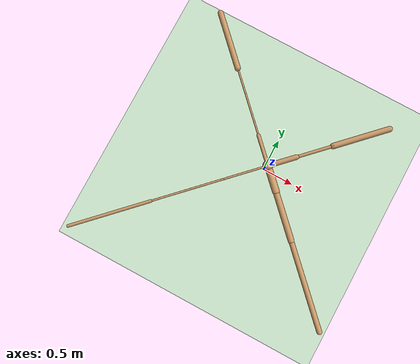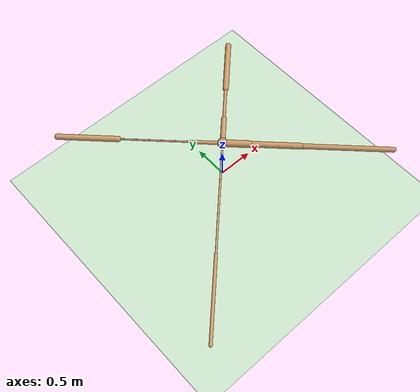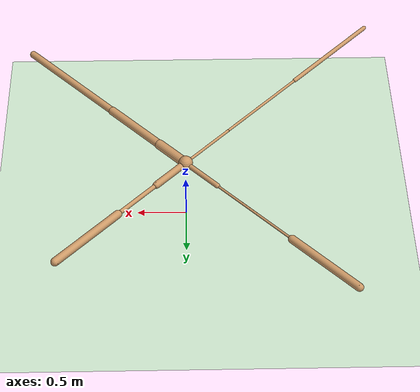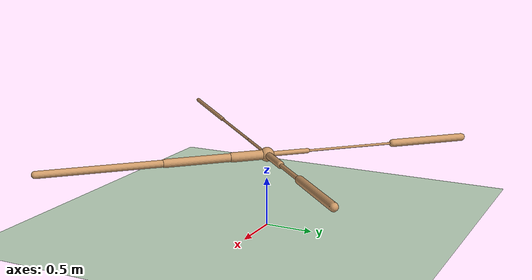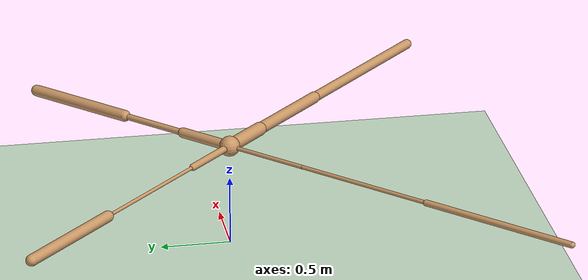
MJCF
<mujoco model="ant">
  <compiler angle="degree" coordinate="local" inertiafromgeom="true" />
  <option integrator="RK4" timestep="0.01" />
  <custom>
    <numeric data="0.0 0.0 0.55 1.0 0.0 0.0 0.0 0.0 1.0 0.0 -1.0 0.0 -1.0 0.0 1.0" name="init_qpos" />
  </custom>
  <default>
    <joint armature="1" damping="1" limited="true" />
    <geom conaffinity="0" condim="3" density="5.0" friction="1 0.5 0.5" margin="0.01" rgba="0.8 0.6 0.4 1" />
  </default>
  <asset>
    <texture builtin="gradient" height="100" rgb1="1 1 1" rgb2="0 0 0" type="skybox" width="100" />
    <texture builtin="flat" height="1278" mark="cross" markrgb="1 1 1" name="texgeom" random="0.01" rgb1="0.8 0.6 0.4" rgb2="0.8 0.6 0.4" type="cube" width="127" />
    <texture builtin="checker" height="100" name="texplane" rgb1="0 0 0" rgb2="0.8 0.8 0.8" type="2d" width="100" />
    <material name="MatPlane" reflectance="0.5" shininess="1" specular="1" texrepeat="60 60" texture="texplane" />
    <material name="geom" texture="texgeom" texuniform="true" />
  </asset>
  <worldbody>
    <light cutoff="100" diffuse="1 1 1" dir="-0 0 -1.3" directional="true" exponent="1" pos="0 0 1.3" specular=".1 .1 .1" />
    <geom conaffinity="1" condim="3" material="MatPlane" name="floor" pos="0 0 0" rgba="0.8 0.9 0.8 1" size="40 40 40" type="plane" />
    <body name="torso" pos="0 0 0.75">
      <camera name="track" mode="trackcom" pos="0 -11 5" xyaxes="1 0 0 0 0.5 1" />
      <geom name="torso_geom" pos="0 0 0" size="0.07294809818267822" type="sphere" />
      <joint armature="0" damping="0" limited="false" margin="0.01" name="root" pos="0 0 0" type="free" />
      <body name="front_left_leg" pos="0 0 0">
        <geom fromto="0 0 0 0.28814980387687683 0.28814980387687683 0" name="aux_1_geom" size="0.036150529980659485" type="capsule" />
        <body name="aux_1" pos="0.28814980387687683 0.28814980387687683 0">
          <joint axis="0 0 1" name="hip_1" pos="0.0 0.0 0.0" range="-30 30" type="hinge" />
          <geom fromto="0 0 0 0.3670961856842041 0.3670961856842041 0" name="left_leg_geom" size="0.022149641066789627" type="capsule" />
          <body name="left_leg_geom_aux" pos="0.3670961856842041 0.3670961856842041 0">
            <joint axis="-1 1 0" name="ankle_1" pos="0.0 0.0 0.0" range="30 70" type="hinge" />
            <geom fromto="0 0 0 0.5686513185501099 0.5686513185501099 0" name="left_ankle_geom" size="0.04130098596215248" type="capsule" />
          </body>
        </body>
      </body>
      <body name="front_right_leg" pos="0 0 0">
        <geom fromto="0 0 0 -0.30760765075683594 0.30760765075683594 0" name="aux_2_geom" size="0.0252512376755476" type="capsule" />
        <body name="aux_2" pos="-0.30760765075683594 0.30760765075683594 0">
          <joint axis="0 0 1" name="hip_2" pos="0.0 0.0 0.0" range="-30 30" type="hinge" />
          <geom fromto="0 0 0 -0.6850748062133789 0.6850748062133789 0" name="right_leg_geom" size="0.012020405381917953" type="capsule" />
          <body name="right_leg_geom_aux" pos="-0.6850748062133789 0.6850748062133789 0">
            <joint axis="1 1 0" name="ankle_2" pos="0.0 0.0 0.0" range="-70 -30" type="hinge" />
            <geom fromto="0 0 0 -0.5786046981811523 0.5786046981811523 0" name="right_ankle_geom" size="0.03991365805268288" type="capsule" />
          </body>
        </body>
      </body>
      <body name="back_leg" pos="0 0 0">
        <geom fromto="0 0 0 -0.43837153911590576 -0.43837153911590576 0" name="aux_3_geom" size="0.014013802632689476" type="capsule" />
        <body name="aux_3" pos="-0.43837153911590576 -0.43837153911590576 0">
          <joint axis="0 0 1" name="hip_3" pos="0.0 0.0 0.0" range="-30 30" type="hinge" />
          <geom fromto="0 0 0 -0.7238893508911133 -0.7238893508911133 0" name="back_leg_geom" size="0.013620937243103981" type="capsule" />
          <body name="back_leg_geom_aux" pos="-0.7238893508911133 -0.7238893508911133 0">
            <joint axis="-1 1 0" name="ankle_3" pos="0.0 0.0 0.0" range="-70 -30" type="hinge" />
            <geom fromto="0 0 0 -0.8105373382568359 -0.8105373382568359 0" name="third_ankle_geom" size="0.021930858492851257" type="capsule" />
          </body>
        </body>
      </body>
      <body name="right_back_leg" pos="0 0 0">
        <geom fromto="0 0 0 0.25778207182884216 -0.25778207182884216 0" name="aux_4_geom" size="0.04961489886045456" type="capsule" />
        <body name="aux_4" pos="0.25778207182884216 -0.25778207182884216 0">
          <joint axis="0 0 1" name="hip_4" pos="0.0 0.0 0.0" range="-30 30" type="hinge" />
          <geom fromto="0 0 0 0.48421111702919006 -0.48421111702919006 0" name="rightback_leg_geom" size="0.04266893118619919" type="capsule" />
          <body name="rightback_leg_geom_aux" pos="0.48421111702919006 -0.48421111702919006 0">
            <joint axis="1 1 0" name="ankle_4" pos="0.0 0.0 0.0" range="30 70" type="hinge" />
            <geom fromto="0 0 0 0.8691112995147705 -0.8691112995147705 0" name="fourth_ankle_geom" size="0.03627856820821762" type="capsule" />
          </body>
        </body>
      </body>
    </body>
  </worldbody>
  <actuator>
    <motor ctrllimited="true" ctrlrange="-1.0 1.0" joint="hip_4" gear="150" />
    <motor ctrllimited="true" ctrlrange="-1.0 1.0" joint="ankle_4" gear="150" />
    <motor ctrllimited="true" ctrlrange="-1.0 1.0" joint="hip_1" gear="150" />
    <motor ctrllimited="true" ctrlrange="-1.0 1.0" joint="ankle_1" gear="150" />
    <motor ctrllimited="true" ctrlrange="-1.0 1.0" joint="hip_2" gear="150" />
    <motor ctrllimited="true" ctrlrange="-1.0 1.0" joint="ankle_2" gear="150" />
    <motor ctrllimited="true" ctrlrange="-1.0 1.0" joint="hip_3" gear="150" />
    <motor ctrllimited="true" ctrlrange="-1.0 1.0" joint="ankle_3" gear="150" />
  </actuator>
</mujoco>
